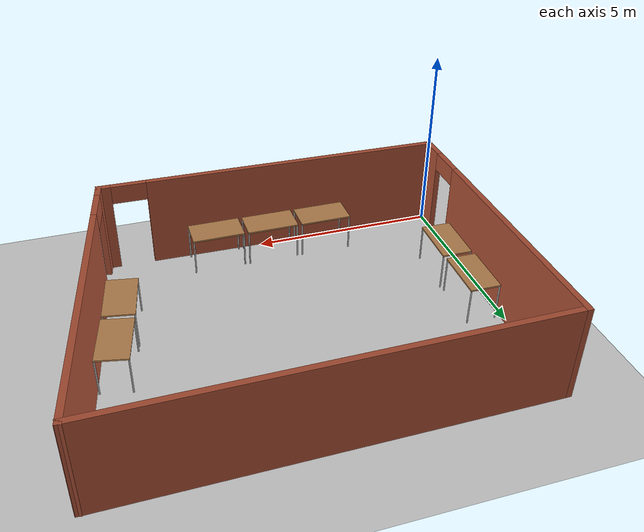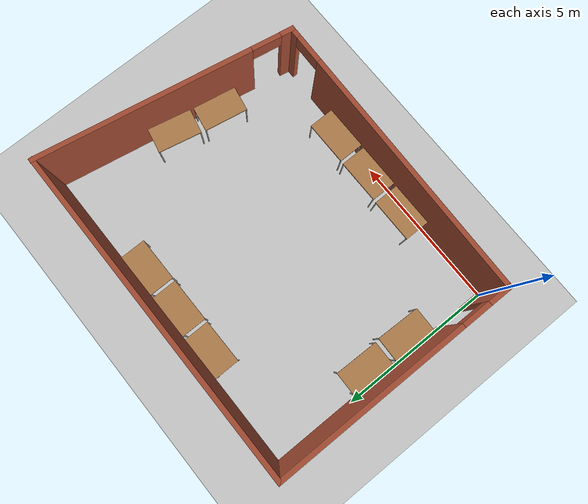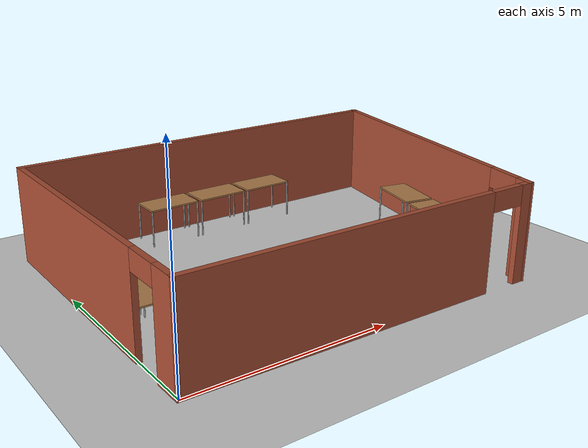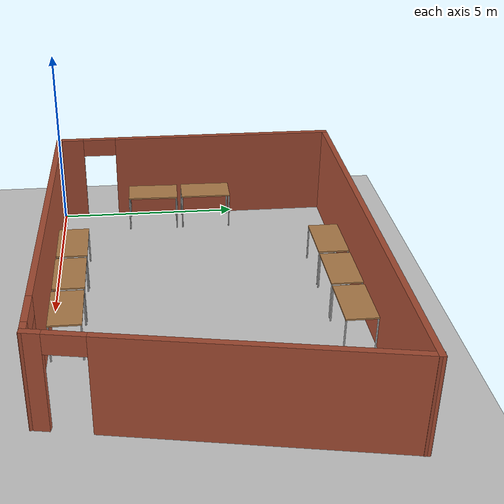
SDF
<sdf version="1.6">
 <world name="default">
  <light name="sun" type="directional">
   <pose>0 0 10 0 -0 0</pose>
   <diffuse>0.8 0.8 0.8 1</diffuse>
   <specular>0.1 0.1 0.1 1</specular>
   <attenuation>
    <range>1000</range>
    <constant>0.9</constant>
    <linear>0.01</linear>
    <quadratic>0.001</quadratic>
   </attenuation>
   <direction>-0.5 0.5 -1</direction>
  </light>
  <model name="ground_plane">
   <static>1</static>
   <link name="link">
    <collision name="collision">
     <geometry><plane><normal>0 0 1</normal><size>100 100</size></plane></geometry>
     <surface><friction><ode><mu>100</mu><mu2>50</mu2></ode></friction></surface>
    </collision>
    <visual name="visual">
     <cast_shadows>0</cast_shadows>
     <geometry><plane><normal>0 0 1</normal><size>100 100</size></plane></geometry>
     <material>
      <script><uri>file://media/materials/scripts/gazebo.material</uri><name>Gazebo/Grey</name></script>
     </material>
    </visual>
   </link>
  </model>
  <gravity>0 0 -9.8</gravity>
  <magnetic_field>6e-06 2.3e-05 -4.2e-05</magnetic_field>
  <atmosphere type="adiabatic"/>
  <physics name="default_physics" default="0" type="ode">
   <max_step_size>0.001</max_step_size>
   <real_time_factor>1</real_time_factor>
   <real_time_update_rate>1000</real_time_update_rate>
  </physics>
  <scene><ambient>0.4 0.4 0.4 1</ambient><background>0.7 0.7 0.7 1</background><shadows>1</shadows></scene>
  <spherical_coordinates>
   <surface_model>EARTH_WGS84</surface_model>
   <latitude_deg>0</latitude_deg>
   <longitude_deg>0</longitude_deg>
   <elevation>0</elevation>
   <heading_deg>0</heading_deg>
  </spherical_coordinates>
  <model name="Iribe_room">
   <pose>5.33941 3.7845 0 0 -0 0</pose>
   <link name="Wall_1">
    <pose>-5.33941 0.089 0 0 -0 1.5708</pose>
    <visual name="Wall_1_Visual_0">
     <pose>-3.56835 0 1.25 0 -0 0</pose>
     <geometry><box><size>0.760292 0.15 2.5</size></box></geometry>
     <material>
      <script><uri>file://media/materials/scripts/gazebo.material</uri><name>Gazebo/Bricks</name></script>
      <ambient>0.996078 0.47451 0.0196078 1</ambient>
     </material>
    </visual>
    <collision name="Wall_1_Collision_0">
     <geometry><box><size>0.760292 0.15 2.5</size></box></geometry>
     <pose>-3.56835 0 1.25 0 -0 0</pose>
    </collision>
    <visual name="Wall_1_Visual_1">
     <pose>0.837146 0 1.25 0 -0 0</pose>
     <geometry><box><size>6.22271 0.15 2.5</size></box></geometry>
     <material>
      <script><uri>file://media/materials/scripts/gazebo.material</uri><name>Gazebo/Bricks</name></script>
      <ambient>0.996078 0.47451 0.0196078 1</ambient>
     </material>
    </visual>
    <collision name="Wall_1_Collision_1">
     <geometry><box><size>6.22271 0.15 2.5</size></box></geometry>
     <pose>0.837146 0 1.25 0 -0 0</pose>
    </collision>
    <visual name="Wall_1_Visual_2">
     <pose>-2.73121 0 2.25 0 -0 0</pose>
     <geometry><box><size>0.914 0.15 0.5</size></box></geometry>
     <material>
      <script><uri>file://media/materials/scripts/gazebo.material</uri><name>Gazebo/Bricks</name></script>
      <ambient>0.996078 0.47451 0.0196078 1</ambient>
     </material>
    </visual>
    <collision name="Wall_1_Collision_2">
     <geometry><box><size>0.914 0.15 0.5</size></box></geometry>
     <pose>-2.73121 0 2.25 0 -0 0</pose>
    </collision>
   </link>
   <link name="Wall_4">
    <collision name="Wall_4_Collision">
     <geometry><box><size>10.818 0.15 2.5</size></box></geometry>
     <pose>0 0 1.25 0 -0 0</pose>
    </collision>
    <visual name="Wall_4_Visual">
     <pose>0 0 1.25 0 -0 0</pose>
     <geometry><box><size>10.818 0.15 2.5</size></box></geometry>
     <material>
      <script><uri>file://media/materials/scripts/gazebo.material</uri><name>Gazebo/Bricks</name></script>
      <ambient>0.996078 0.47451 0.0196078 1</ambient>
     </material>
    </visual>
    <pose>-0.005412 3.9625 0 0 -0 0</pose>
   </link>
   <link name="Wall_7">
    <pose>4.60459 0 0 0 0 -1.75152</pose>
    <visual name="Wall_7_Visual_0">
     <pose>-0.683316 0 1.25 0 -0 0</pose>
     <geometry><box><size>6.83957 0.15 2.5</size></box></geometry>
     <material>
      <script><uri>file://media/materials/scripts/gazebo.material</uri><name>Gazebo/Bricks</name></script>
      <ambient>0.996078 0.47451 0.0196078 1</ambient>
     </material>
    </visual>
    <collision name="Wall_7_Collision_0">
     <geometry><box><size>6.83957 0.15 2.5</size></box></geometry>
     <pose>-0.683316 0 1.25 0 -0 0</pose>
    </collision>
    <visual name="Wall_7_Visual_1">
     <pose>3.87678 0 1.25 0 -0 0</pose>
     <geometry><box><size>0.452631 0.15 2.5</size></box></geometry>
     <material>
      <script><uri>file://media/materials/scripts/gazebo.material</uri><name>Gazebo/Bricks</name></script>
      <ambient>0.996078 0.47451 0.0196078 1</ambient>
     </material>
    </visual>
    <collision name="Wall_7_Collision_1">
     <geometry><box><size>0.452631 0.15 2.5</size></box></geometry>
     <pose>3.87678 0 1.25 0 -0 0</pose>
    </collision>
    <visual name="Wall_7_Visual_2">
     <pose>3.19347 0 2.25 0 -0 0</pose>
     <geometry><box><size>0.914 0.15 0.5</size></box></geometry>
     <material>
      <script><uri>file://media/materials/scripts/gazebo.material</uri><name>Gazebo/Bricks</name></script>
      <ambient>0.996078 0.47451 0.0196078 1</ambient>
     </material>
    </visual>
    <collision name="Wall_7_Collision_2">
     <geometry><box><size>0.914 0.15 0.5</size></box></geometry>
     <pose>3.19347 0 2.25 0 -0 0</pose>
    </collision>
   </link>
   <link name="Wall_8">
    <pose>-0.729412 -3.8735 0 0 -0 3.12229</pose>
    <visual name="Wall_8_Visual_0">
     <pose>-4.49544 0 1.25 0 -0 0</pose>
     <geometry><box><size>0.380831 0.15 2.5</size></box></geometry>
     <material>
      <script><uri>file://media/materials/scripts/gazebo.material</uri><name>Gazebo/Bricks</name></script>
      <ambient>0.996078 0.47451 0.0196078 1</ambient>
     </material>
    </visual>
    <collision name="Wall_8_Collision_0">
     <geometry><box><size>0.380831 0.15 2.5</size></box></geometry>
     <pose>-4.49544 0 1.25 0 -0 0</pose>
    </collision>
    <visual name="Wall_8_Visual_1">
     <pose>0.647415 0 1.25 0 -0 0</pose>
     <geometry><box><size>8.07689 0.15 2.5</size></box></geometry>
     <material>
      <script><uri>file://media/materials/scripts/gazebo.material</uri><name>Gazebo/Bricks</name></script>
      <ambient>0.996078 0.47451 0.0196078 1</ambient>
     </material>
    </visual>
    <collision name="Wall_8_Collision_1">
     <geometry><box><size>8.07689 0.15 2.5</size></box></geometry>
     <pose>0.647415 0 1.25 0 -0 0</pose>
    </collision>
    <visual name="Wall_8_Visual_2">
     <pose>-3.84803 0 2.25 0 -0 0</pose>
     <geometry><box><size>0.914 0.15 0.5</size></box></geometry>
     <material>
      <script><uri>file://media/materials/scripts/gazebo.material</uri><name>Gazebo/Bricks</name></script>
      <ambient>0.996078 0.47451 0.0196078 1</ambient>
     </material>
    </visual>
    <collision name="Wall_8_Collision_2">
     <geometry><box><size>0.914 0.15 0.5</size></box></geometry>
     <pose>-3.84803 0 2.25 0 -0 0</pose>
    </collision>
   </link>
   <static>1</static>
  </model>
  <model name="table">
   <static>0</static>
   <link name="link">
    <collision name="surface">
     <pose>0 0 1 0 -0 0</pose>
     <geometry><box><size>1.5 0.8 0.03</size></box></geometry>
     <surface><friction><ode><mu>0.6</mu><mu2>0.6</mu2></ode></friction></surface>
    </collision>
    <visual name="visual1">
     <pose>0 0 1 0 -0 0</pose>
     <geometry><box><size>1.4 0.8 0.04</size></box></geometry>
     <material>
      <script><uri>file://media/materials/scripts/gazebo.material</uri><name>Gazebo/Wood</name></script>
     </material>
    </visual>
    <collision name="front_left_leg">
     <pose>0.68 0.38 0.5 0 -0 0</pose>
     <geometry><cylinder><radius>0.02</radius><length>1</length></cylinder></geometry>
    </collision>
    <visual name="front_left_leg">
     <pose>0.68 0.38 0.5 0 -0 0</pose>
     <geometry><cylinder><radius>0.02</radius><length>1</length></cylinder></geometry>
     <material>
      <script><uri>file://media/materials/scripts/gazebo.material</uri><name>Gazebo/Grey</name></script>
     </material>
    </visual>
    <collision name="front_right_leg">
     <pose>0.68 -0.38 0.5 0 -0 0</pose>
     <geometry><cylinder><radius>0.02</radius><length>1</length></cylinder></geometry>
    </collision>
    <visual name="front_right_leg">
     <pose>0.68 -0.38 0.5 0 -0 0</pose>
     <geometry><cylinder><radius>0.02</radius><length>1</length></cylinder></geometry>
     <material>
      <script><uri>file://media/materials/scripts/gazebo.material</uri><name>Gazebo/Grey</name></script>
     </material>
    </visual>
    <collision name="back_right_leg">
     <pose>-0.68 -0.38 0.5 0 -0 0</pose>
     <geometry><cylinder><radius>0.02</radius><length>1</length></cylinder></geometry>
    </collision>
    <visual name="back_right_leg">
     <pose>-0.68 -0.38 0.5 0 -0 0</pose>
     <geometry><cylinder><radius>0.02</radius><length>1</length></cylinder></geometry>
     <material>
      <script><uri>file://media/materials/scripts/gazebo.material</uri><name>Gazebo/Grey</name></script>
     </material>
    </visual>
    <collision name="back_left_leg">
     <pose>-0.68 0.38 0.5 0 -0 0</pose>
     <geometry><cylinder><radius>0.02</radius><length>1</length></cylinder></geometry>
    </collision>
    <visual name="back_left_leg">
     <pose>-0.68 0.38 0.5 0 -0 0</pose>
     <geometry><cylinder><radius>0.02</radius><length>1</length></cylinder></geometry>
     <material>
      <script><uri>file://media/materials/scripts/gazebo.material</uri><name>Gazebo/Grey</name></script>
     </material>
    </visual>
    <inertial>
     <inertia><ixx>1</ixx><ixy>0</ixy><ixz>0</ixz><iyy>1</iyy><iyz>0</iyz><izz>1</izz></inertia>
     <mass>1</mass>
    </inertial>
   </link>
   <pose>0.578777 2.63505 -8e-06 0 0 -1.59699</pose>
  </model>
  <model name="table_0">
   <static>0</static>
   <link name="link">
    <collision name="surface">
     <pose>0 0 1 0 -0 0</pose>
     <geometry><box><size>1.5 0.8 0.03</size></box></geometry>
     <surface><friction><ode><mu>0.6</mu><mu2>0.6</mu2></ode></friction></surface>
    </collision>
    <visual name="visual1">
     <pose>0 0 1 0 -0 0</pose>
     <geometry><box><size>1.4 0.8 0.04</size></box></geometry>
     <material>
      <script><uri>file://media/materials/scripts/gazebo.material</uri><name>Gazebo/Wood</name></script>
     </material>
    </visual>
    <collision name="front_left_leg">
     <pose>0.68 0.38 0.5 0 -0 0</pose>
     <geometry><cylinder><radius>0.02</radius><length>1</length></cylinder></geometry>
    </collision>
    <visual name="front_left_leg">
     <pose>0.68 0.38 0.5 0 -0 0</pose>
     <geometry><cylinder><radius>0.02</radius><length>1</length></cylinder></geometry>
     <material>
      <script><uri>file://media/materials/scripts/gazebo.material</uri><name>Gazebo/Grey</name></script>
     </material>
    </visual>
    <collision name="front_right_leg">
     <pose>0.68 -0.38 0.5 0 -0 0</pose>
     <geometry><cylinder><radius>0.02</radius><length>1</length></cylinder></geometry>
    </collision>
    <visual name="front_right_leg">
     <pose>0.68 -0.38 0.5 0 -0 0</pose>
     <geometry><cylinder><radius>0.02</radius><length>1</length></cylinder></geometry>
     <material>
      <script><uri>file://media/materials/scripts/gazebo.material</uri><name>Gazebo/Grey</name></script>
     </material>
    </visual>
    <collision name="back_right_leg">
     <pose>-0.68 -0.38 0.5 0 -0 0</pose>
     <geometry><cylinder><radius>0.02</radius><length>1</length></cylinder></geometry>
    </collision>
    <visual name="back_right_leg">
     <pose>-0.68 -0.38 0.5 0 -0 0</pose>
     <geometry><cylinder><radius>0.02</radius><length>1</length></cylinder></geometry>
     <material>
      <script><uri>file://media/materials/scripts/gazebo.material</uri><name>Gazebo/Grey</name></script>
     </material>
    </visual>
    <collision name="back_left_leg">
     <pose>-0.68 0.38 0.5 0 -0 0</pose>
     <geometry><cylinder><radius>0.02</radius><length>1</length></cylinder></geometry>
    </collision>
    <visual name="back_left_leg">
     <pose>-0.68 0.38 0.5 0 -0 0</pose>
     <geometry><cylinder><radius>0.02</radius><length>1</length></cylinder></geometry>
     <material>
      <script><uri>file://media/materials/scripts/gazebo.material</uri><name>Gazebo/Grey</name></script>
     </material>
    </visual>
    <inertial>
     <inertia><ixx>1</ixx><ixy>0</ixy><ixz>0</ixz><iyy>1</iyy><iyz>0</iyz><izz>1</izz></inertia>
     <mass>1</mass>
    </inertial>
   </link>
   <pose>0.580561 4.15904 -1e-06 -1e-06 -0 1.55282</pose>
  </model>
  <model name="table_1">
   <static>0</static>
   <link name="link">
    <collision name="surface">
     <pose>0 0 1 0 -0 0</pose>
     <geometry><box><size>1.5 0.8 0.03</size></box></geometry>
     <surface><friction><ode><mu>0.6</mu><mu2>0.6</mu2></ode></friction></surface>
    </collision>
    <visual name="visual1">
     <pose>0 0 1 0 -0 0</pose>
     <geometry><box><size>1.4 0.8 0.04</size></box></geometry>
     <material>
      <script><uri>file://media/materials/scripts/gazebo.material</uri><name>Gazebo/Wood</name></script>
     </material>
    </visual>
    <collision name="front_left_leg">
     <pose>0.68 0.38 0.5 0 -0 0</pose>
     <geometry><cylinder><radius>0.02</radius><length>1</length></cylinder></geometry>
    </collision>
    <visual name="front_left_leg">
     <pose>0.68 0.38 0.5 0 -0 0</pose>
     <geometry><cylinder><radius>0.02</radius><length>1</length></cylinder></geometry>
     <material>
      <script><uri>file://media/materials/scripts/gazebo.material</uri><name>Gazebo/Grey</name></script>
     </material>
    </visual>
    <collision name="front_right_leg">
     <pose>0.68 -0.38 0.5 0 -0 0</pose>
     <geometry><cylinder><radius>0.02</radius><length>1</length></cylinder></geometry>
    </collision>
    <visual name="front_right_leg">
     <pose>0.68 -0.38 0.5 0 -0 0</pose>
     <geometry><cylinder><radius>0.02</radius><length>1</length></cylinder></geometry>
     <material>
      <script><uri>file://media/materials/scripts/gazebo.material</uri><name>Gazebo/Grey</name></script>
     </material>
    </visual>
    <collision name="back_right_leg">
     <pose>-0.68 -0.38 0.5 0 -0 0</pose>
     <geometry><cylinder><radius>0.02</radius><length>1</length></cylinder></geometry>
    </collision>
    <visual name="back_right_leg">
     <pose>-0.68 -0.38 0.5 0 -0 0</pose>
     <geometry><cylinder><radius>0.02</radius><length>1</length></cylinder></geometry>
     <material>
      <script><uri>file://media/materials/scripts/gazebo.material</uri><name>Gazebo/Grey</name></script>
     </material>
    </visual>
    <collision name="back_left_leg">
     <pose>-0.68 0.38 0.5 0 -0 0</pose>
     <geometry><cylinder><radius>0.02</radius><length>1</length></cylinder></geometry>
    </collision>
    <visual name="back_left_leg">
     <pose>-0.68 0.38 0.5 0 -0 0</pose>
     <geometry><cylinder><radius>0.02</radius><length>1</length></cylinder></geometry>
     <material>
      <script><uri>file://media/materials/scripts/gazebo.material</uri><name>Gazebo/Grey</name></script>
     </material>
    </visual>
    <inertial>
     <inertia><ixx>1</ixx><ixy>0</ixy><ixz>0</ixz><iyy>1</iyy><iyz>0</iyz><izz>1</izz></inertia>
     <mass>1</mass>
    </inertial>
   </link>
   <pose>3.68675 7.18148 -9e-06 1e-06 -1e-06 0.005446</pose>
  </model>
  <model name="table_4">
   <static>0</static>
   <link name="link">
    <collision name="surface">
     <pose>0 0 1 0 -0 0</pose>
     <geometry><box><size>1.5 0.8 0.03</size></box></geometry>
     <surface><friction><ode><mu>0.6</mu><mu2>0.6</mu2></ode></friction></surface>
    </collision>
    <visual name="visual1">
     <pose>0 0 1 0 -0 0</pose>
     <geometry><box><size>1.4 0.8 0.04</size></box></geometry>
     <material>
      <script><uri>file://media/materials/scripts/gazebo.material</uri><name>Gazebo/Wood</name></script>
     </material>
    </visual>
    <collision name="front_left_leg">
     <pose>0.68 0.38 0.5 0 -0 0</pose>
     <geometry><cylinder><radius>0.02</radius><length>1</length></cylinder></geometry>
    </collision>
    <visual name="front_left_leg">
     <pose>0.68 0.38 0.5 0 -0 0</pose>
     <geometry><cylinder><radius>0.02</radius><length>1</length></cylinder></geometry>
     <material>
      <script><uri>file://media/materials/scripts/gazebo.material</uri><name>Gazebo/Grey</name></script>
     </material>
    </visual>
    <collision name="front_right_leg">
     <pose>0.68 -0.38 0.5 0 -0 0</pose>
     <geometry><cylinder><radius>0.02</radius><length>1</length></cylinder></geometry>
    </collision>
    <visual name="front_right_leg">
     <pose>0.68 -0.38 0.5 0 -0 0</pose>
     <geometry><cylinder><radius>0.02</radius><length>1</length></cylinder></geometry>
     <material>
      <script><uri>file://media/materials/scripts/gazebo.material</uri><name>Gazebo/Grey</name></script>
     </material>
    </visual>
    <collision name="back_right_leg">
     <pose>-0.68 -0.38 0.5 0 -0 0</pose>
     <geometry><cylinder><radius>0.02</radius><length>1</length></cylinder></geometry>
    </collision>
    <visual name="back_right_leg">
     <pose>-0.68 -0.38 0.5 0 -0 0</pose>
     <geometry><cylinder><radius>0.02</radius><length>1</length></cylinder></geometry>
     <material>
      <script><uri>file://media/materials/scripts/gazebo.material</uri><name>Gazebo/Grey</name></script>
     </material>
    </visual>
    <collision name="back_left_leg">
     <pose>-0.68 0.38 0.5 0 -0 0</pose>
     <geometry><cylinder><radius>0.02</radius><length>1</length></cylinder></geometry>
    </collision>
    <visual name="back_left_leg">
     <pose>-0.68 0.38 0.5 0 -0 0</pose>
     <geometry><cylinder><radius>0.02</radius><length>1</length></cylinder></geometry>
     <material>
      <script><uri>file://media/materials/scripts/gazebo.material</uri><name>Gazebo/Grey</name></script>
     </material>
    </visual>
    <inertial>
     <inertia><ixx>1</ixx><ixy>0</ixy><ixz>0</ixz><iyy>1</iyy><iyz>0</iyz><izz>1</izz></inertia>
     <mass>1</mass>
    </inertial>
   </link>
   <pose>5.18793 7.18562 -1e-06 -2e-06 0 0.002486</pose>
  </model>
  <model name="table_5">
   <static>0</static>
   <link name="link">
    <collision name="surface">
     <pose>0 0 1 0 -0 0</pose>
     <geometry><box><size>1.5 0.8 0.03</size></box></geometry>
     <surface><friction><ode><mu>0.6</mu><mu2>0.6</mu2></ode></friction></surface>
    </collision>
    <visual name="visual1">
     <pose>0 0 1 0 -0 0</pose>
     <geometry><box><size>1.4 0.8 0.04</size></box></geometry>
     <material>
      <script><uri>file://media/materials/scripts/gazebo.material</uri><name>Gazebo/Wood</name></script>
     </material>
    </visual>
    <collision name="front_left_leg">
     <pose>0.68 0.38 0.5 0 -0 0</pose>
     <geometry><cylinder><radius>0.02</radius><length>1</length></cylinder></geometry>
    </collision>
    <visual name="front_left_leg">
     <pose>0.68 0.38 0.5 0 -0 0</pose>
     <geometry><cylinder><radius>0.02</radius><length>1</length></cylinder></geometry>
     <material>
      <script><uri>file://media/materials/scripts/gazebo.material</uri><name>Gazebo/Grey</name></script>
     </material>
    </visual>
    <collision name="front_right_leg">
     <pose>0.68 -0.38 0.5 0 -0 0</pose>
     <geometry><cylinder><radius>0.02</radius><length>1</length></cylinder></geometry>
    </collision>
    <visual name="front_right_leg">
     <pose>0.68 -0.38 0.5 0 -0 0</pose>
     <geometry><cylinder><radius>0.02</radius><length>1</length></cylinder></geometry>
     <material>
      <script><uri>file://media/materials/scripts/gazebo.material</uri><name>Gazebo/Grey</name></script>
     </material>
    </visual>
    <collision name="back_right_leg">
     <pose>-0.68 -0.38 0.5 0 -0 0</pose>
     <geometry><cylinder><radius>0.02</radius><length>1</length></cylinder></geometry>
    </collision>
    <visual name="back_right_leg">
     <pose>-0.68 -0.38 0.5 0 -0 0</pose>
     <geometry><cylinder><radius>0.02</radius><length>1</length></cylinder></geometry>
     <material>
      <script><uri>file://media/materials/scripts/gazebo.material</uri><name>Gazebo/Grey</name></script>
     </material>
    </visual>
    <collision name="back_left_leg">
     <pose>-0.68 0.38 0.5 0 -0 0</pose>
     <geometry><cylinder><radius>0.02</radius><length>1</length></cylinder></geometry>
    </collision>
    <visual name="back_left_leg">
     <pose>-0.68 0.38 0.5 0 -0 0</pose>
     <geometry><cylinder><radius>0.02</radius><length>1</length></cylinder></geometry>
     <material>
      <script><uri>file://media/materials/scripts/gazebo.material</uri><name>Gazebo/Grey</name></script>
     </material>
    </visual>
    <inertial>
     <inertia><ixx>1</ixx><ixy>0</ixy><ixz>0</ixz><iyy>1</iyy><iyz>0</iyz><izz>1</izz></inertia>
     <mass>1</mass>
    </inertial>
   </link>
   <pose>6.68793 7.18736 -9e-06 0 -0 0.002487</pose>
  </model>
  <model name="table_6">
   <static>0</static>
   <link name="link">
    <collision name="surface">
     <pose>0 0 1 0 -0 0</pose>
     <geometry><box><size>1.5 0.8 0.03</size></box></geometry>
     <surface><friction><ode><mu>0.6</mu><mu2>0.6</mu2></ode></friction></surface>
    </collision>
    <visual name="visual1">
     <pose>0 0 1 0 -0 0</pose>
     <geometry><box><size>1.4 0.8 0.04</size></box></geometry>
     <material>
      <script><uri>file://media/materials/scripts/gazebo.material</uri><name>Gazebo/Wood</name></script>
     </material>
    </visual>
    <collision name="front_left_leg">
     <pose>0.68 0.38 0.5 0 -0 0</pose>
     <geometry><cylinder><radius>0.02</radius><length>1</length></cylinder></geometry>
    </collision>
    <visual name="front_left_leg">
     <pose>0.68 0.38 0.5 0 -0 0</pose>
     <geometry><cylinder><radius>0.02</radius><length>1</length></cylinder></geometry>
     <material>
      <script><uri>file://media/materials/scripts/gazebo.material</uri><name>Gazebo/Grey</name></script>
     </material>
    </visual>
    <collision name="front_right_leg">
     <pose>0.68 -0.38 0.5 0 -0 0</pose>
     <geometry><cylinder><radius>0.02</radius><length>1</length></cylinder></geometry>
    </collision>
    <visual name="front_right_leg">
     <pose>0.68 -0.38 0.5 0 -0 0</pose>
     <geometry><cylinder><radius>0.02</radius><length>1</length></cylinder></geometry>
     <material>
      <script><uri>file://media/materials/scripts/gazebo.material</uri><name>Gazebo/Grey</name></script>
     </material>
    </visual>
    <collision name="back_right_leg">
     <pose>-0.68 -0.38 0.5 0 -0 0</pose>
     <geometry><cylinder><radius>0.02</radius><length>1</length></cylinder></geometry>
    </collision>
    <visual name="back_right_leg">
     <pose>-0.68 -0.38 0.5 0 -0 0</pose>
     <geometry><cylinder><radius>0.02</radius><length>1</length></cylinder></geometry>
     <material>
      <script><uri>file://media/materials/scripts/gazebo.material</uri><name>Gazebo/Grey</name></script>
     </material>
    </visual>
    <collision name="back_left_leg">
     <pose>-0.68 0.38 0.5 0 -0 0</pose>
     <geometry><cylinder><radius>0.02</radius><length>1</length></cylinder></geometry>
    </collision>
    <visual name="back_left_leg">
     <pose>-0.68 0.38 0.5 0 -0 0</pose>
     <geometry><cylinder><radius>0.02</radius><length>1</length></cylinder></geometry>
     <material>
      <script><uri>file://media/materials/scripts/gazebo.material</uri><name>Gazebo/Grey</name></script>
     </material>
    </visual>
    <inertial>
     <inertia><ixx>1</ixx><ixy>0</ixy><ixz>0</ixz><iyy>1</iyy><iyz>0</iyz><izz>1</izz></inertia>
     <mass>1</mass>
    </inertial>
   </link>
   <pose>9.15947 2.58686 -4e-06 0 5e-06 1.3904</pose>
  </model>
  <model name="table_7">
   <static>0</static>
   <link name="link">
    <collision name="surface">
     <pose>0 0 1 0 -0 0</pose>
     <geometry><box><size>1.5 0.8 0.03</size></box></geometry>
     <surface><friction><ode><mu>0.6</mu><mu2>0.6</mu2></ode></friction></surface>
    </collision>
    <visual name="visual1">
     <pose>0 0 1 0 -0 0</pose>
     <geometry><box><size>1.4 0.8 0.04</size></box></geometry>
     <material>
      <script><uri>file://media/materials/scripts/gazebo.material</uri><name>Gazebo/Wood</name></script>
     </material>
    </visual>
    <collision name="front_left_leg">
     <pose>0.68 0.38 0.5 0 -0 0</pose>
     <geometry><cylinder><radius>0.02</radius><length>1</length></cylinder></geometry>
    </collision>
    <visual name="front_left_leg">
     <pose>0.68 0.38 0.5 0 -0 0</pose>
     <geometry><cylinder><radius>0.02</radius><length>1</length></cylinder></geometry>
     <material>
      <script><uri>file://media/materials/scripts/gazebo.material</uri><name>Gazebo/Grey</name></script>
     </material>
    </visual>
    <collision name="front_right_leg">
     <pose>0.68 -0.38 0.5 0 -0 0</pose>
     <geometry><cylinder><radius>0.02</radius><length>1</length></cylinder></geometry>
    </collision>
    <visual name="front_right_leg">
     <pose>0.68 -0.38 0.5 0 -0 0</pose>
     <geometry><cylinder><radius>0.02</radius><length>1</length></cylinder></geometry>
     <material>
      <script><uri>file://media/materials/scripts/gazebo.material</uri><name>Gazebo/Grey</name></script>
     </material>
    </visual>
    <collision name="back_right_leg">
     <pose>-0.68 -0.38 0.5 0 -0 0</pose>
     <geometry><cylinder><radius>0.02</radius><length>1</length></cylinder></geometry>
    </collision>
    <visual name="back_right_leg">
     <pose>-0.68 -0.38 0.5 0 -0 0</pose>
     <geometry><cylinder><radius>0.02</radius><length>1</length></cylinder></geometry>
     <material>
      <script><uri>file://media/materials/scripts/gazebo.material</uri><name>Gazebo/Grey</name></script>
     </material>
    </visual>
    <collision name="back_left_leg">
     <pose>-0.68 0.38 0.5 0 -0 0</pose>
     <geometry><cylinder><radius>0.02</radius><length>1</length></cylinder></geometry>
    </collision>
    <visual name="back_left_leg">
     <pose>-0.68 0.38 0.5 0 -0 0</pose>
     <geometry><cylinder><radius>0.02</radius><length>1</length></cylinder></geometry>
     <material>
      <script><uri>file://media/materials/scripts/gazebo.material</uri><name>Gazebo/Grey</name></script>
     </material>
    </visual>
    <inertial>
     <inertia><ixx>1</ixx><ixy>0</ixy><ixz>0</ixz><iyy>1</iyy><iyz>0</iyz><izz>1</izz></inertia>
     <mass>1</mass>
    </inertial>
   </link>
   <pose>9.46515 4.07694 -1e-06 -1e-06 0 1.35833</pose>
  </model>
  <model name="table_8">
   <static>0</static>
   <link name="link">
    <collision name="surface">
     <pose>0 0 1 0 -0 0</pose>
     <geometry><box><size>1.5 0.8 0.03</size></box></geometry>
     <surface><friction><ode><mu>0.6</mu><mu2>0.6</mu2></ode></friction></surface>
    </collision>
    <visual name="visual1">
     <pose>0 0 1 0 -0 0</pose>
     <geometry><box><size>1.4 0.8 0.04</size></box></geometry>
     <material>
      <script><uri>file://media/materials/scripts/gazebo.material</uri><name>Gazebo/Wood</name></script>
     </material>
    </visual>
    <collision name="front_left_leg">
     <pose>0.68 0.38 0.5 0 -0 0</pose>
     <geometry><cylinder><radius>0.02</radius><length>1</length></cylinder></geometry>
    </collision>
    <visual name="front_left_leg">
     <pose>0.68 0.38 0.5 0 -0 0</pose>
     <geometry><cylinder><radius>0.02</radius><length>1</length></cylinder></geometry>
     <material>
      <script><uri>file://media/materials/scripts/gazebo.material</uri><name>Gazebo/Grey</name></script>
     </material>
    </visual>
    <collision name="front_right_leg">
     <pose>0.68 -0.38 0.5 0 -0 0</pose>
     <geometry><cylinder><radius>0.02</radius><length>1</length></cylinder></geometry>
    </collision>
    <visual name="front_right_leg">
     <pose>0.68 -0.38 0.5 0 -0 0</pose>
     <geometry><cylinder><radius>0.02</radius><length>1</length></cylinder></geometry>
     <material>
      <script><uri>file://media/materials/scripts/gazebo.material</uri><name>Gazebo/Grey</name></script>
     </material>
    </visual>
    <collision name="back_right_leg">
     <pose>-0.68 -0.38 0.5 0 -0 0</pose>
     <geometry><cylinder><radius>0.02</radius><length>1</length></cylinder></geometry>
    </collision>
    <visual name="back_right_leg">
     <pose>-0.68 -0.38 0.5 0 -0 0</pose>
     <geometry><cylinder><radius>0.02</radius><length>1</length></cylinder></geometry>
     <material>
      <script><uri>file://media/materials/scripts/gazebo.material</uri><name>Gazebo/Grey</name></script>
     </material>
    </visual>
    <collision name="back_left_leg">
     <pose>-0.68 0.38 0.5 0 -0 0</pose>
     <geometry><cylinder><radius>0.02</radius><length>1</length></cylinder></geometry>
    </collision>
    <visual name="back_left_leg">
     <pose>-0.68 0.38 0.5 0 -0 0</pose>
     <geometry><cylinder><radius>0.02</radius><length>1</length></cylinder></geometry>
     <material>
      <script><uri>file://media/materials/scripts/gazebo.material</uri><name>Gazebo/Grey</name></script>
     </material>
    </visual>
    <inertial>
     <inertia><ixx>1</ixx><ixy>0</ixy><ixz>0</ixz><iyy>1</iyy><iyz>0</iyz><izz>1</izz></inertia>
     <mass>1</mass>
    </inertial>
   </link>
   <pose>6.33437 0.408571 -9e-06 2e-06 -0 -7.4e-05</pose>
  </model>
  <model name="table_10">
   <static>0</static>
   <link name="link">
    <collision name="surface">
     <pose>0 0 1 0 -0 0</pose>
     <geometry><box><size>1.5 0.8 0.03</size></box></geometry>
     <surface><friction><ode><mu>0.6</mu><mu2>0.6</mu2></ode></friction></surface>
    </collision>
    <visual name="visual1">
     <pose>0 0 1 0 -0 0</pose>
     <geometry><box><size>1.4 0.8 0.04</size></box></geometry>
     <material>
      <script><uri>file://media/materials/scripts/gazebo.material</uri><name>Gazebo/Wood</name></script>
     </material>
    </visual>
    <collision name="front_left_leg">
     <pose>0.68 0.38 0.5 0 -0 0</pose>
     <geometry><cylinder><radius>0.02</radius><length>1</length></cylinder></geometry>
    </collision>
    <visual name="front_left_leg">
     <pose>0.68 0.38 0.5 0 -0 0</pose>
     <geometry><cylinder><radius>0.02</radius><length>1</length></cylinder></geometry>
     <material>
      <script><uri>file://media/materials/scripts/gazebo.material</uri><name>Gazebo/Grey</name></script>
     </material>
    </visual>
    <collision name="front_right_leg">
     <pose>0.68 -0.38 0.5 0 -0 0</pose>
     <geometry><cylinder><radius>0.02</radius><length>1</length></cylinder></geometry>
    </collision>
    <visual name="front_right_leg">
     <pose>0.68 -0.38 0.5 0 -0 0</pose>
     <geometry><cylinder><radius>0.02</radius><length>1</length></cylinder></geometry>
     <material>
      <script><uri>file://media/materials/scripts/gazebo.material</uri><name>Gazebo/Grey</name></script>
     </material>
    </visual>
    <collision name="back_right_leg">
     <pose>-0.68 -0.38 0.5 0 -0 0</pose>
     <geometry><cylinder><radius>0.02</radius><length>1</length></cylinder></geometry>
    </collision>
    <visual name="back_right_leg">
     <pose>-0.68 -0.38 0.5 0 -0 0</pose>
     <geometry><cylinder><radius>0.02</radius><length>1</length></cylinder></geometry>
     <material>
      <script><uri>file://media/materials/scripts/gazebo.material</uri><name>Gazebo/Grey</name></script>
     </material>
    </visual>
    <collision name="back_left_leg">
     <pose>-0.68 0.38 0.5 0 -0 0</pose>
     <geometry><cylinder><radius>0.02</radius><length>1</length></cylinder></geometry>
    </collision>
    <visual name="back_left_leg">
     <pose>-0.68 0.38 0.5 0 -0 0</pose>
     <geometry><cylinder><radius>0.02</radius><length>1</length></cylinder></geometry>
     <material>
      <script><uri>file://media/materials/scripts/gazebo.material</uri><name>Gazebo/Grey</name></script>
     </material>
    </visual>
    <inertial>
     <inertia><ixx>1</ixx><ixy>0</ixy><ixz>0</ixz><iyy>1</iyy><iyz>0</iyz><izz>1</izz></inertia>
     <mass>1</mass>
    </inertial>
   </link>
   <pose>4.83437 0.420448 -8e-06 0 0 -7.5e-05</pose>
  </model>
  <model name="table_13">
   <static>0</static>
   <link name="link">
    <collision name="surface">
     <pose>0 0 1 0 -0 0</pose>
     <geometry><box><size>1.5 0.8 0.03</size></box></geometry>
     <surface><friction><ode><mu>0.6</mu><mu2>0.6</mu2></ode></friction></surface>
    </collision>
    <visual name="visual1">
     <pose>0 0 1 0 -0 0</pose>
     <geometry><box><size>1.4 0.8 0.04</size></box></geometry>
     <material>
      <script><uri>file://media/materials/scripts/gazebo.material</uri><name>Gazebo/Wood</name></script>
     </material>
    </visual>
    <collision name="front_left_leg">
     <pose>0.68 0.38 0.5 0 -0 0</pose>
     <geometry><cylinder><radius>0.02</radius><length>1</length></cylinder></geometry>
    </collision>
    <visual name="front_left_leg">
     <pose>0.68 0.38 0.5 0 -0 0</pose>
     <geometry><cylinder><radius>0.02</radius><length>1</length></cylinder></geometry>
     <material>
      <script><uri>file://media/materials/scripts/gazebo.material</uri><name>Gazebo/Grey</name></script>
     </material>
    </visual>
    <collision name="front_right_leg">
     <pose>0.68 -0.38 0.5 0 -0 0</pose>
     <geometry><cylinder><radius>0.02</radius><length>1</length></cylinder></geometry>
    </collision>
    <visual name="front_right_leg">
     <pose>0.68 -0.38 0.5 0 -0 0</pose>
     <geometry><cylinder><radius>0.02</radius><length>1</length></cylinder></geometry>
     <material>
      <script><uri>file://media/materials/scripts/gazebo.material</uri><name>Gazebo/Grey</name></script>
     </material>
    </visual>
    <collision name="back_right_leg">
     <pose>-0.68 -0.38 0.5 0 -0 0</pose>
     <geometry><cylinder><radius>0.02</radius><length>1</length></cylinder></geometry>
    </collision>
    <visual name="back_right_leg">
     <pose>-0.68 -0.38 0.5 0 -0 0</pose>
     <geometry><cylinder><radius>0.02</radius><length>1</length></cylinder></geometry>
     <material>
      <script><uri>file://media/materials/scripts/gazebo.material</uri><name>Gazebo/Grey</name></script>
     </material>
    </visual>
    <collision name="back_left_leg">
     <pose>-0.68 0.38 0.5 0 -0 0</pose>
     <geometry><cylinder><radius>0.02</radius><length>1</length></cylinder></geometry>
    </collision>
    <visual name="back_left_leg">
     <pose>-0.68 0.38 0.5 0 -0 0</pose>
     <geometry><cylinder><radius>0.02</radius><length>1</length></cylinder></geometry>
     <material>
      <script><uri>file://media/materials/scripts/gazebo.material</uri><name>Gazebo/Grey</name></script>
     </material>
    </visual>
    <inertial>
     <inertia><ixx>1</ixx><ixy>0</ixy><ixz>0</ixz><iyy>1</iyy><iyz>0</iyz><izz>1</izz></inertia>
     <mass>1</mass>
    </inertial>
   </link>
   <pose>3.33437 0.432948 -9e-06 2e-06 -0 -7.6e-05</pose>
  </model>
 </world>
</sdf>
